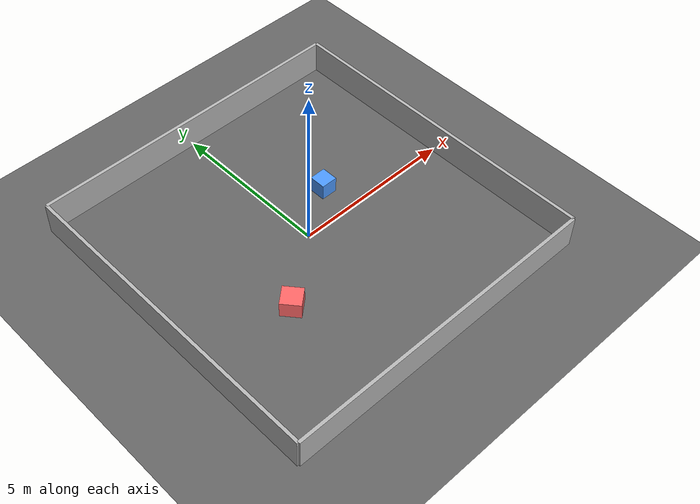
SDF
<?xml version="1.0" ?>
<!--
  Minimal indoor world: a 10×10 m room with a few obstacles.
  Used by `make sim` to give the full stack something to drive around in.
-->
<sdf version="1.9">
  <world name="openbrain_lab">
    <plugin filename="ignition-gazebo-physics-system" name="ignition::gazebo::systems::Physics"/>
    <plugin filename="ignition-gazebo-user-commands-system" name="ignition::gazebo::systems::UserCommands"/>
    <plugin filename="ignition-gazebo-scene-broadcaster-system" name="ignition::gazebo::systems::SceneBroadcaster"/>
    <plugin filename="ignition-gazebo-sensors-system" name="ignition::gazebo::systems::Sensors">
      <render_engine>ogre2</render_engine>
    </plugin>

    <light name="sun" type="directional">
      <pose>0 0 10 0 0 0</pose>
      <diffuse>1 1 1 1</diffuse>
      <specular>0.5 0.5 0.5 1</specular>
      <direction>-0.5 -0.5 -1</direction>
    </light>

    <model name="ground_plane">
      <static>true</static>
      <link name="link">
        <collision name="collision"><geometry><plane><normal>0 0 1</normal><size>20 20</size></plane></geometry></collision>
        <visual name="visual"><geometry><plane><normal>0 0 1</normal><size>20 20</size></plane></geometry>
          <material><ambient>0.2 0.2 0.2 1</ambient><diffuse>0.4 0.4 0.4 1</diffuse></material></visual>
      </link>
    </model>

    <model name="wall_n"><static>true</static><pose>0 5 0.5 0 0 0</pose><link name="l">
      <collision name="c"><geometry><box><size>10 0.1 1</size></box></geometry></collision>
      <visual name="v"><geometry><box><size>10 0.1 1</size></box></geometry></visual></link></model>
    <model name="wall_s"><static>true</static><pose>0 -5 0.5 0 0 0</pose><link name="l">
      <collision name="c"><geometry><box><size>10 0.1 1</size></box></geometry></collision>
      <visual name="v"><geometry><box><size>10 0.1 1</size></box></geometry></visual></link></model>
    <model name="wall_e"><static>true</static><pose>5 0 0.5 0 0 0</pose><link name="l">
      <collision name="c"><geometry><box><size>0.1 10 1</size></box></geometry></collision>
      <visual name="v"><geometry><box><size>0.1 10 1</size></box></geometry></visual></link></model>
    <model name="wall_w"><static>true</static><pose>-5 0 0.5 0 0 0</pose><link name="l">
      <collision name="c"><geometry><box><size>0.1 10 1</size></box></geometry></collision>
      <visual name="v"><geometry><box><size>0.1 10 1</size></box></geometry></visual></link></model>

    <model name="box_a"><pose>1.5 1.0 0.25 0 0 0</pose><static>true</static><link name="l">
      <collision name="c"><geometry><box><size>0.5 0.5 0.5</size></box></geometry></collision>
      <visual name="v"><geometry><box><size>0.5 0.5 0.5</size></box></geometry>
        <material><diffuse>0.3 0.6 1.0 1</diffuse></material></visual></link></model>
    <model name="box_b"><pose>-2.0 -1.5 0.25 0 0 0.7</pose><static>true</static><link name="l">
      <collision name="c"><geometry><box><size>0.6 0.6 0.5</size></box></geometry></collision>
      <visual name="v"><geometry><box><size>0.6 0.6 0.5</size></box></geometry>
        <material><diffuse>1.0 0.4 0.4 1</diffuse></material></visual></link></model>

    <gravity>0 0 -9.81</gravity>
  </world>
</sdf>
